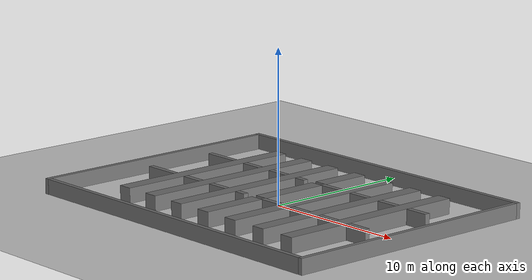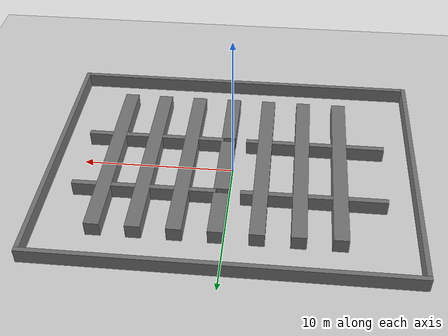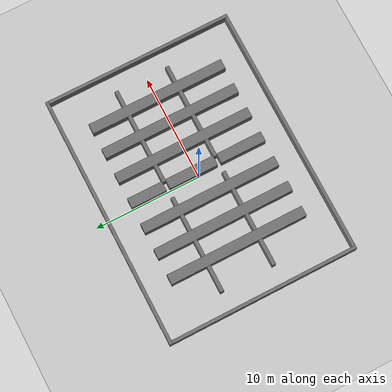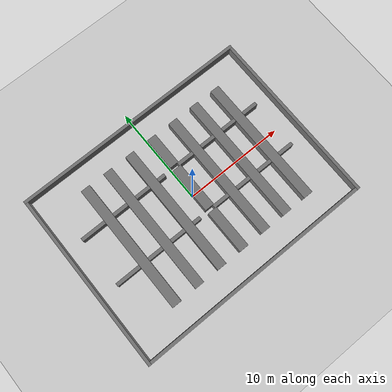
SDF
<sdf version='1.7'>
  <world name='warehouse_aisles_01'>
    <include><uri>model://sun</uri></include>
    <include><uri>model://ground_plane</uri></include>
    <model name='benchmark_obstacles'>
      <static>true</static>
      <link name='obstacles_link'>
        <collision name='obs_0001_collision'>
          <pose>0.000 8.850 0.500 0 0 0</pose>
          <geometry><box><size>24.000 0.300 1.000</size></box></geometry>
          <surface><contact><collide_without_contact>false</collide_without_contact></contact></surface>
        </collision>
        <visual name='obs_0001_visual'>
          <pose>0.000 8.850 0.500 0 0 0</pose>
          <geometry><box><size>24.000 0.300 1.000</size></box></geometry>
          <material>
            <ambient>0.25 0.25 0.25 1</ambient>
            <diffuse>0.45 0.45 0.45 1</diffuse>
            <specular>0.05 0.05 0.05 1</specular>
          </material>
        </visual>
        <collision name='obs_0002_collision'>
          <pose>-11.850 -0.150 0.500 0 0 0</pose>
          <geometry><box><size>0.300 17.700 1.000</size></box></geometry>
          <surface><contact><collide_without_contact>false</collide_without_contact></contact></surface>
        </collision>
        <visual name='obs_0002_visual'>
          <pose>-11.850 -0.150 0.500 0 0 0</pose>
          <geometry><box><size>0.300 17.700 1.000</size></box></geometry>
          <material>
            <ambient>0.25 0.25 0.25 1</ambient>
            <diffuse>0.45 0.45 0.45 1</diffuse>
            <specular>0.05 0.05 0.05 1</specular>
          </material>
        </visual>
        <collision name='obs_0003_collision'>
          <pose>11.850 -0.150 0.500 0 0 0</pose>
          <geometry><box><size>0.300 17.700 1.000</size></box></geometry>
          <surface><contact><collide_without_contact>false</collide_without_contact></contact></surface>
        </collision>
        <visual name='obs_0003_visual'>
          <pose>11.850 -0.150 0.500 0 0 0</pose>
          <geometry><box><size>0.300 17.700 1.000</size></box></geometry>
          <material>
            <ambient>0.25 0.25 0.25 1</ambient>
            <diffuse>0.45 0.45 0.45 1</diffuse>
            <specular>0.05 0.05 0.05 1</specular>
          </material>
        </visual>
        <collision name='obs_0004_collision'>
          <pose>-7.025 -0.025 0.500 0 0 0</pose>
          <geometry><box><size>0.950 13.050 1.000</size></box></geometry>
          <surface><contact><collide_without_contact>false</collide_without_contact></contact></surface>
        </collision>
        <visual name='obs_0004_visual'>
          <pose>-7.025 -0.025 0.500 0 0 0</pose>
          <geometry><box><size>0.950 13.050 1.000</size></box></geometry>
          <material>
            <ambient>0.25 0.25 0.25 1</ambient>
            <diffuse>0.45 0.45 0.45 1</diffuse>
            <specular>0.05 0.05 0.05 1</specular>
          </material>
        </visual>
        <collision name='obs_0005_collision'>
          <pose>-4.525 -0.025 0.500 0 0 0</pose>
          <geometry><box><size>0.950 13.050 1.000</size></box></geometry>
          <surface><contact><collide_without_contact>false</collide_without_contact></contact></surface>
        </collision>
        <visual name='obs_0005_visual'>
          <pose>-4.525 -0.025 0.500 0 0 0</pose>
          <geometry><box><size>0.950 13.050 1.000</size></box></geometry>
          <material>
            <ambient>0.25 0.25 0.25 1</ambient>
            <diffuse>0.45 0.45 0.45 1</diffuse>
            <specular>0.05 0.05 0.05 1</specular>
          </material>
        </visual>
        <collision name='obs_0006_collision'>
          <pose>-2.025 -0.025 0.500 0 0 0</pose>
          <geometry><box><size>0.950 13.050 1.000</size></box></geometry>
          <surface><contact><collide_without_contact>false</collide_without_contact></contact></surface>
        </collision>
        <visual name='obs_0006_visual'>
          <pose>-2.025 -0.025 0.500 0 0 0</pose>
          <geometry><box><size>0.950 13.050 1.000</size></box></geometry>
          <material>
            <ambient>0.25 0.25 0.25 1</ambient>
            <diffuse>0.45 0.45 0.45 1</diffuse>
            <specular>0.05 0.05 0.05 1</specular>
          </material>
        </visual>
        <collision name='obs_0007_collision'>
          <pose>0.475 4.825 0.500 0 0 0</pose>
          <geometry><box><size>0.950 3.350 1.000</size></box></geometry>
          <surface><contact><collide_without_contact>false</collide_without_contact></contact></surface>
        </collision>
        <visual name='obs_0007_visual'>
          <pose>0.475 4.825 0.500 0 0 0</pose>
          <geometry><box><size>0.950 3.350 1.000</size></box></geometry>
          <material>
            <ambient>0.25 0.25 0.25 1</ambient>
            <diffuse>0.45 0.45 0.45 1</diffuse>
            <specular>0.05 0.05 0.05 1</specular>
          </material>
        </visual>
        <collision name='obs_0008_collision'>
          <pose>2.975 -0.025 0.500 0 0 0</pose>
          <geometry><box><size>0.950 13.050 1.000</size></box></geometry>
          <surface><contact><collide_without_contact>false</collide_without_contact></contact></surface>
        </collision>
        <visual name='obs_0008_visual'>
          <pose>2.975 -0.025 0.500 0 0 0</pose>
          <geometry><box><size>0.950 13.050 1.000</size></box></geometry>
          <material>
            <ambient>0.25 0.25 0.25 1</ambient>
            <diffuse>0.45 0.45 0.45 1</diffuse>
            <specular>0.05 0.05 0.05 1</specular>
          </material>
        </visual>
        <collision name='obs_0009_collision'>
          <pose>5.475 -0.025 0.500 0 0 0</pose>
          <geometry><box><size>0.950 13.050 1.000</size></box></geometry>
          <surface><contact><collide_without_contact>false</collide_without_contact></contact></surface>
        </collision>
        <visual name='obs_0009_visual'>
          <pose>5.475 -0.025 0.500 0 0 0</pose>
          <geometry><box><size>0.950 13.050 1.000</size></box></geometry>
          <material>
            <ambient>0.25 0.25 0.25 1</ambient>
            <diffuse>0.45 0.45 0.45 1</diffuse>
            <specular>0.05 0.05 0.05 1</specular>
          </material>
        </visual>
        <collision name='obs_0010_collision'>
          <pose>7.975 -0.025 0.500 0 0 0</pose>
          <geometry><box><size>0.950 13.050 1.000</size></box></geometry>
          <surface><contact><collide_without_contact>false</collide_without_contact></contact></surface>
        </collision>
        <visual name='obs_0010_visual'>
          <pose>7.975 -0.025 0.500 0 0 0</pose>
          <geometry><box><size>0.950 13.050 1.000</size></box></geometry>
          <material>
            <ambient>0.25 0.25 0.25 1</ambient>
            <diffuse>0.45 0.45 0.45 1</diffuse>
            <specular>0.05 0.05 0.05 1</specular>
          </material>
        </visual>
        <collision name='obs_0011_collision'>
          <pose>-8.750 2.975 0.500 0 0 0</pose>
          <geometry><box><size>2.500 0.350 1.000</size></box></geometry>
          <surface><contact><collide_without_contact>false</collide_without_contact></contact></surface>
        </collision>
        <visual name='obs_0011_visual'>
          <pose>-8.750 2.975 0.500 0 0 0</pose>
          <geometry><box><size>2.500 0.350 1.000</size></box></geometry>
          <material>
            <ambient>0.25 0.25 0.25 1</ambient>
            <diffuse>0.45 0.45 0.45 1</diffuse>
            <specular>0.05 0.05 0.05 1</specular>
          </material>
        </visual>
        <collision name='obs_0012_collision'>
          <pose>-5.775 2.975 0.500 0 0 0</pose>
          <geometry><box><size>1.550 0.350 1.000</size></box></geometry>
          <surface><contact><collide_without_contact>false</collide_without_contact></contact></surface>
        </collision>
        <visual name='obs_0012_visual'>
          <pose>-5.775 2.975 0.500 0 0 0</pose>
          <geometry><box><size>1.550 0.350 1.000</size></box></geometry>
          <material>
            <ambient>0.25 0.25 0.25 1</ambient>
            <diffuse>0.45 0.45 0.45 1</diffuse>
            <specular>0.05 0.05 0.05 1</specular>
          </material>
        </visual>
        <collision name='obs_0013_collision'>
          <pose>-3.275 2.975 0.500 0 0 0</pose>
          <geometry><box><size>1.550 0.350 1.000</size></box></geometry>
          <surface><contact><collide_without_contact>false</collide_without_contact></contact></surface>
        </collision>
        <visual name='obs_0013_visual'>
          <pose>-3.275 2.975 0.500 0 0 0</pose>
          <geometry><box><size>1.550 0.350 1.000</size></box></geometry>
          <material>
            <ambient>0.25 0.25 0.25 1</ambient>
            <diffuse>0.45 0.45 0.45 1</diffuse>
            <specular>0.05 0.05 0.05 1</specular>
          </material>
        </visual>
        <collision name='obs_0014_collision'>
          <pose>-1.150 2.975 0.500 0 0 0</pose>
          <geometry><box><size>0.800 0.350 1.000</size></box></geometry>
          <surface><contact><collide_without_contact>false</collide_without_contact></contact></surface>
        </collision>
        <visual name='obs_0014_visual'>
          <pose>-1.150 2.975 0.500 0 0 0</pose>
          <geometry><box><size>0.800 0.350 1.000</size></box></geometry>
          <material>
            <ambient>0.25 0.25 0.25 1</ambient>
            <diffuse>0.45 0.45 0.45 1</diffuse>
            <specular>0.05 0.05 0.05 1</specular>
          </material>
        </visual>
        <collision name='obs_0015_collision'>
          <pose>1.650 2.975 0.500 0 0 0</pose>
          <geometry><box><size>1.700 0.350 1.000</size></box></geometry>
          <surface><contact><collide_without_contact>false</collide_without_contact></contact></surface>
        </collision>
        <visual name='obs_0015_visual'>
          <pose>1.650 2.975 0.500 0 0 0</pose>
          <geometry><box><size>1.700 0.350 1.000</size></box></geometry>
          <material>
            <ambient>0.25 0.25 0.25 1</ambient>
            <diffuse>0.45 0.45 0.45 1</diffuse>
            <specular>0.05 0.05 0.05 1</specular>
          </material>
        </visual>
        <collision name='obs_0016_collision'>
          <pose>4.225 2.975 0.500 0 0 0</pose>
          <geometry><box><size>1.550 0.350 1.000</size></box></geometry>
          <surface><contact><collide_without_contact>false</collide_without_contact></contact></surface>
        </collision>
        <visual name='obs_0016_visual'>
          <pose>4.225 2.975 0.500 0 0 0</pose>
          <geometry><box><size>1.550 0.350 1.000</size></box></geometry>
          <material>
            <ambient>0.25 0.25 0.25 1</ambient>
            <diffuse>0.45 0.45 0.45 1</diffuse>
            <specular>0.05 0.05 0.05 1</specular>
          </material>
        </visual>
        <collision name='obs_0017_collision'>
          <pose>6.725 2.975 0.500 0 0 0</pose>
          <geometry><box><size>1.550 0.350 1.000</size></box></geometry>
          <surface><contact><collide_without_contact>false</collide_without_contact></contact></surface>
        </collision>
        <visual name='obs_0017_visual'>
          <pose>6.725 2.975 0.500 0 0 0</pose>
          <geometry><box><size>1.550 0.350 1.000</size></box></geometry>
          <material>
            <ambient>0.25 0.25 0.25 1</ambient>
            <diffuse>0.45 0.45 0.45 1</diffuse>
            <specular>0.05 0.05 0.05 1</specular>
          </material>
        </visual>
        <collision name='obs_0018_collision'>
          <pose>9.250 2.975 0.500 0 0 0</pose>
          <geometry><box><size>1.600 0.350 1.000</size></box></geometry>
          <surface><contact><collide_without_contact>false</collide_without_contact></contact></surface>
        </collision>
        <visual name='obs_0018_visual'>
          <pose>9.250 2.975 0.500 0 0 0</pose>
          <geometry><box><size>1.600 0.350 1.000</size></box></geometry>
          <material>
            <ambient>0.25 0.25 0.25 1</ambient>
            <diffuse>0.45 0.45 0.45 1</diffuse>
            <specular>0.05 0.05 0.05 1</specular>
          </material>
        </visual>
        <collision name='obs_0019_collision'>
          <pose>0.475 0.475 0.500 0 0 0</pose>
          <geometry><box><size>0.950 4.650 1.000</size></box></geometry>
          <surface><contact><collide_without_contact>false</collide_without_contact></contact></surface>
        </collision>
        <visual name='obs_0019_visual'>
          <pose>0.475 0.475 0.500 0 0 0</pose>
          <geometry><box><size>0.950 4.650 1.000</size></box></geometry>
          <material>
            <ambient>0.25 0.25 0.25 1</ambient>
            <diffuse>0.45 0.45 0.45 1</diffuse>
            <specular>0.05 0.05 0.05 1</specular>
          </material>
        </visual>
        <collision name='obs_0020_collision'>
          <pose>-8.750 -2.025 0.500 0 0 0</pose>
          <geometry><box><size>2.500 0.350 1.000</size></box></geometry>
          <surface><contact><collide_without_contact>false</collide_without_contact></contact></surface>
        </collision>
        <visual name='obs_0020_visual'>
          <pose>-8.750 -2.025 0.500 0 0 0</pose>
          <geometry><box><size>2.500 0.350 1.000</size></box></geometry>
          <material>
            <ambient>0.25 0.25 0.25 1</ambient>
            <diffuse>0.45 0.45 0.45 1</diffuse>
            <specular>0.05 0.05 0.05 1</specular>
          </material>
        </visual>
        <collision name='obs_0021_collision'>
          <pose>-5.775 -2.025 0.500 0 0 0</pose>
          <geometry><box><size>1.550 0.350 1.000</size></box></geometry>
          <surface><contact><collide_without_contact>false</collide_without_contact></contact></surface>
        </collision>
        <visual name='obs_0021_visual'>
          <pose>-5.775 -2.025 0.500 0 0 0</pose>
          <geometry><box><size>1.550 0.350 1.000</size></box></geometry>
          <material>
            <ambient>0.25 0.25 0.25 1</ambient>
            <diffuse>0.45 0.45 0.45 1</diffuse>
            <specular>0.05 0.05 0.05 1</specular>
          </material>
        </visual>
        <collision name='obs_0022_collision'>
          <pose>-3.275 -2.025 0.500 0 0 0</pose>
          <geometry><box><size>1.550 0.350 1.000</size></box></geometry>
          <surface><contact><collide_without_contact>false</collide_without_contact></contact></surface>
        </collision>
        <visual name='obs_0022_visual'>
          <pose>-3.275 -2.025 0.500 0 0 0</pose>
          <geometry><box><size>1.550 0.350 1.000</size></box></geometry>
          <material>
            <ambient>0.25 0.25 0.25 1</ambient>
            <diffuse>0.45 0.45 0.45 1</diffuse>
            <specular>0.05 0.05 0.05 1</specular>
          </material>
        </visual>
        <collision name='obs_0023_collision'>
          <pose>-1.150 -2.025 0.500 0 0 0</pose>
          <geometry><box><size>0.800 0.350 1.000</size></box></geometry>
          <surface><contact><collide_without_contact>false</collide_without_contact></contact></surface>
        </collision>
        <visual name='obs_0023_visual'>
          <pose>-1.150 -2.025 0.500 0 0 0</pose>
          <geometry><box><size>0.800 0.350 1.000</size></box></geometry>
          <material>
            <ambient>0.25 0.25 0.25 1</ambient>
            <diffuse>0.45 0.45 0.45 1</diffuse>
            <specular>0.05 0.05 0.05 1</specular>
          </material>
        </visual>
        <collision name='obs_0024_collision'>
          <pose>1.650 -2.025 0.500 0 0 0</pose>
          <geometry><box><size>1.700 0.350 1.000</size></box></geometry>
          <surface><contact><collide_without_contact>false</collide_without_contact></contact></surface>
        </collision>
        <visual name='obs_0024_visual'>
          <pose>1.650 -2.025 0.500 0 0 0</pose>
          <geometry><box><size>1.700 0.350 1.000</size></box></geometry>
          <material>
            <ambient>0.25 0.25 0.25 1</ambient>
            <diffuse>0.45 0.45 0.45 1</diffuse>
            <specular>0.05 0.05 0.05 1</specular>
          </material>
        </visual>
        <collision name='obs_0025_collision'>
          <pose>4.225 -2.025 0.500 0 0 0</pose>
          <geometry><box><size>1.550 0.350 1.000</size></box></geometry>
          <surface><contact><collide_without_contact>false</collide_without_contact></contact></surface>
        </collision>
        <visual name='obs_0025_visual'>
          <pose>4.225 -2.025 0.500 0 0 0</pose>
          <geometry><box><size>1.550 0.350 1.000</size></box></geometry>
          <material>
            <ambient>0.25 0.25 0.25 1</ambient>
            <diffuse>0.45 0.45 0.45 1</diffuse>
            <specular>0.05 0.05 0.05 1</specular>
          </material>
        </visual>
        <collision name='obs_0026_collision'>
          <pose>6.725 -2.025 0.500 0 0 0</pose>
          <geometry><box><size>1.550 0.350 1.000</size></box></geometry>
          <surface><contact><collide_without_contact>false</collide_without_contact></contact></surface>
        </collision>
        <visual name='obs_0026_visual'>
          <pose>6.725 -2.025 0.500 0 0 0</pose>
          <geometry><box><size>1.550 0.350 1.000</size></box></geometry>
          <material>
            <ambient>0.25 0.25 0.25 1</ambient>
            <diffuse>0.45 0.45 0.45 1</diffuse>
            <specular>0.05 0.05 0.05 1</specular>
          </material>
        </visual>
        <collision name='obs_0027_collision'>
          <pose>9.250 -2.025 0.500 0 0 0</pose>
          <geometry><box><size>1.600 0.350 1.000</size></box></geometry>
          <surface><contact><collide_without_contact>false</collide_without_contact></contact></surface>
        </collision>
        <visual name='obs_0027_visual'>
          <pose>9.250 -2.025 0.500 0 0 0</pose>
          <geometry><box><size>1.600 0.350 1.000</size></box></geometry>
          <material>
            <ambient>0.25 0.25 0.25 1</ambient>
            <diffuse>0.45 0.45 0.45 1</diffuse>
            <specular>0.05 0.05 0.05 1</specular>
          </material>
        </visual>
        <collision name='obs_0028_collision'>
          <pose>0.475 -4.375 0.500 0 0 0</pose>
          <geometry><box><size>0.950 4.350 1.000</size></box></geometry>
          <surface><contact><collide_without_contact>false</collide_without_contact></contact></surface>
        </collision>
        <visual name='obs_0028_visual'>
          <pose>0.475 -4.375 0.500 0 0 0</pose>
          <geometry><box><size>0.950 4.350 1.000</size></box></geometry>
          <material>
            <ambient>0.25 0.25 0.25 1</ambient>
            <diffuse>0.45 0.45 0.45 1</diffuse>
            <specular>0.05 0.05 0.05 1</specular>
          </material>
        </visual>
        <collision name='obs_0029_collision'>
          <pose>0.000 -8.850 0.500 0 0 0</pose>
          <geometry><box><size>23.400 0.300 1.000</size></box></geometry>
          <surface><contact><collide_without_contact>false</collide_without_contact></contact></surface>
        </collision>
        <visual name='obs_0029_visual'>
          <pose>0.000 -8.850 0.500 0 0 0</pose>
          <geometry><box><size>23.400 0.300 1.000</size></box></geometry>
          <material>
            <ambient>0.25 0.25 0.25 1</ambient>
            <diffuse>0.45 0.45 0.45 1</diffuse>
            <specular>0.05 0.05 0.05 1</specular>
          </material>
        </visual>
      </link>
    </model>
  </world>
</sdf>
